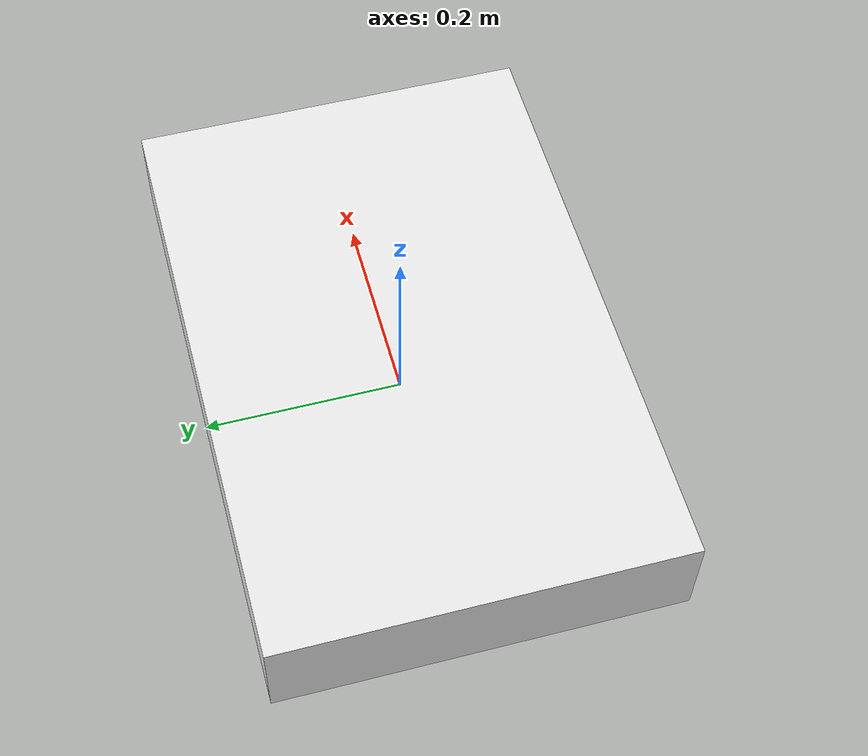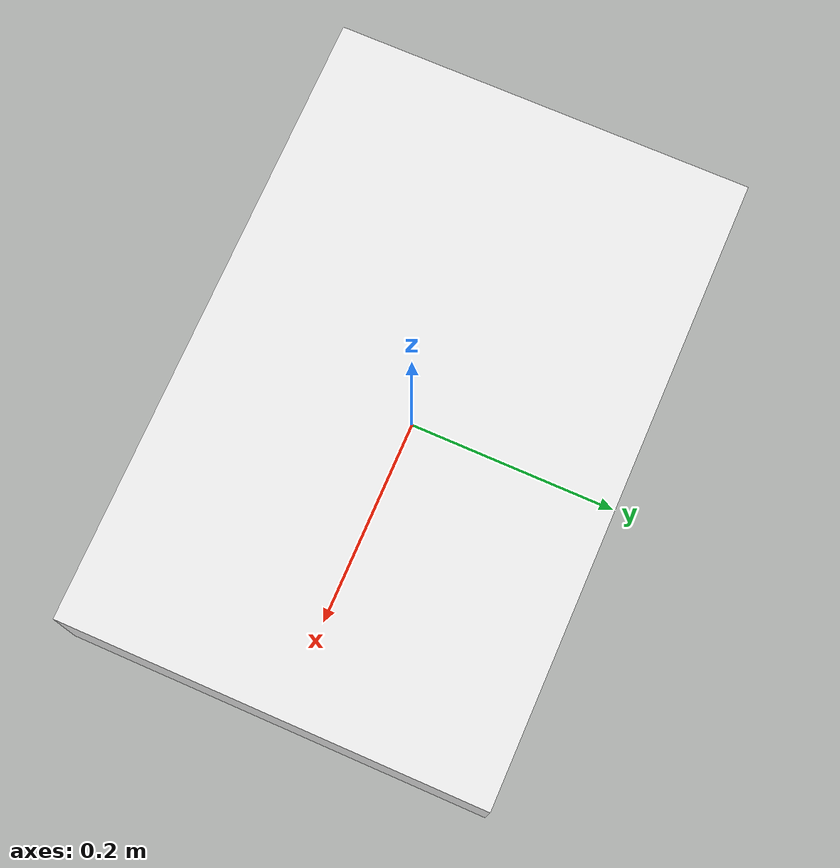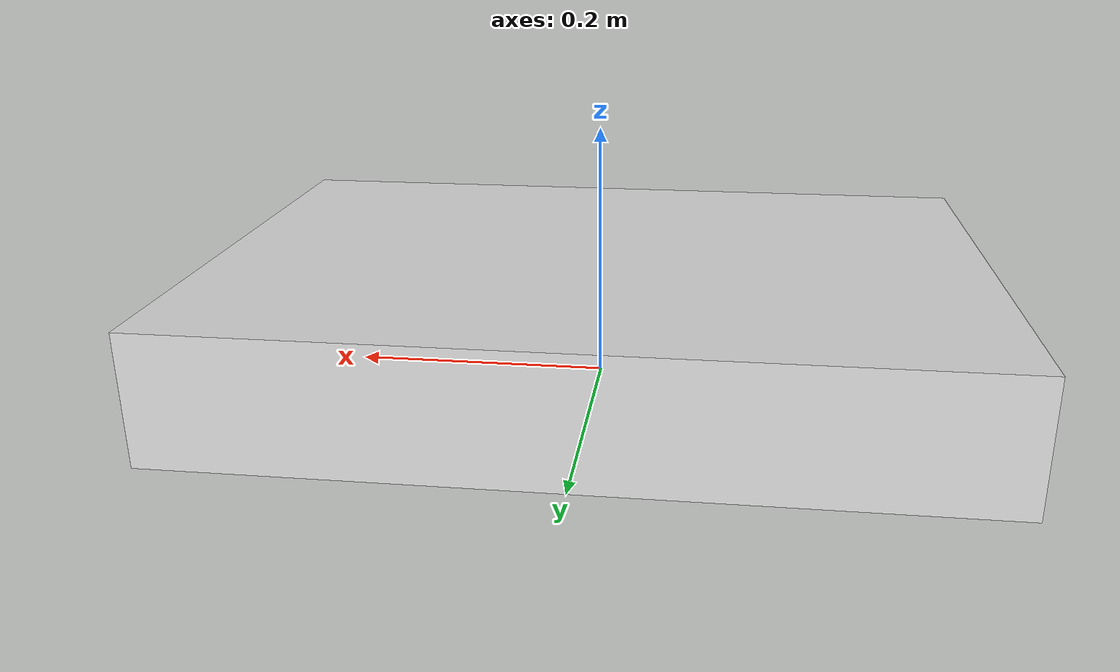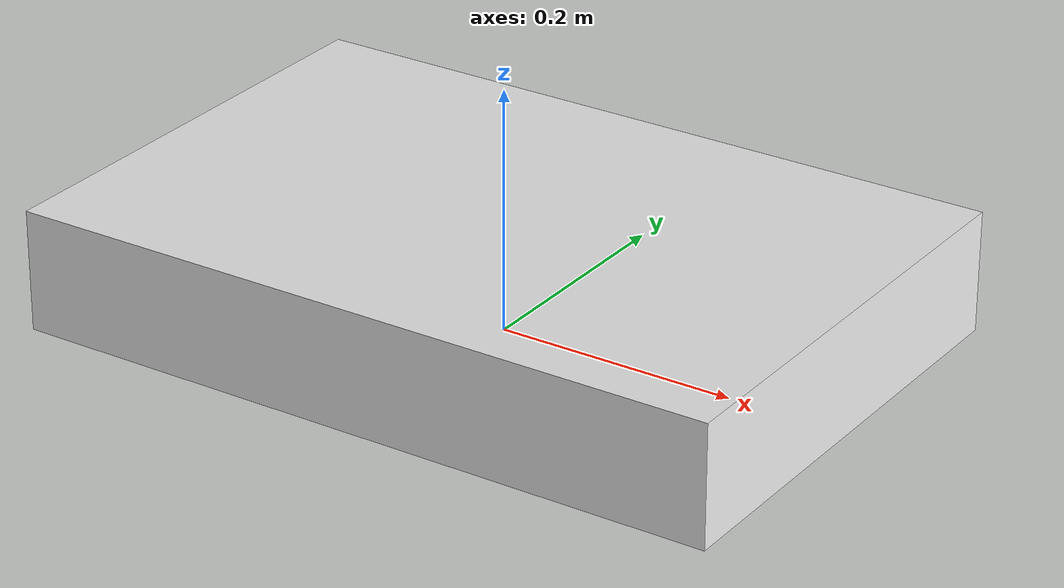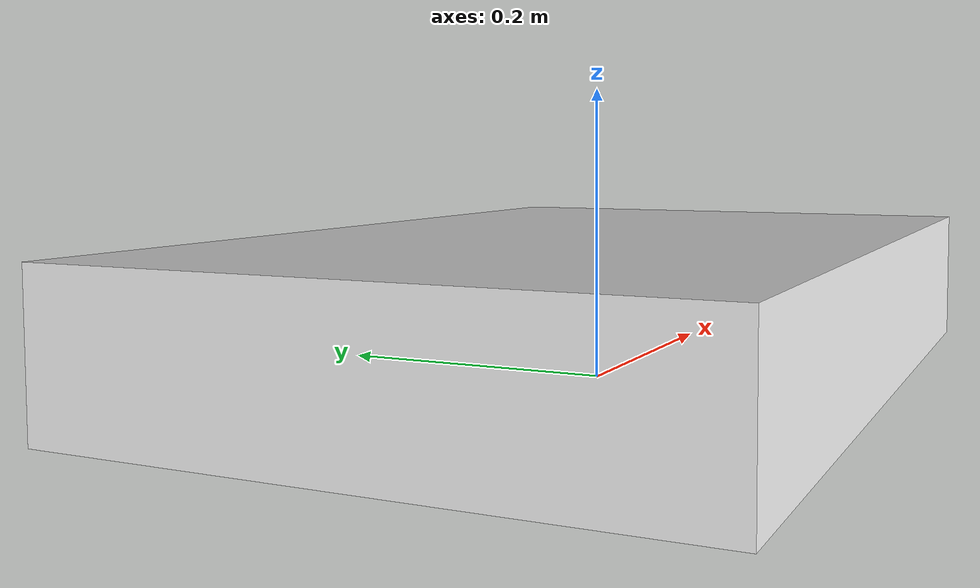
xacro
<?xml version="1.0"?>

<robot xmlns:xacro="http://www.ros.org/wiki/xacro">

  <xacro:property name="chassis_length" value="0.60"/>
  <xacro:property name="chassis_width" value="0.40"/>
  <xacro:property name="chassis_height" value="0.10"/>

  <!-- TODO:
       Replace with verified physical mass when available.
  -->
  <xacro:property name="chassis_mass" value="0.1"/>

  <!-- BASE LINK -->

  <link name="base_link"/>

  <!-- CHASSIS -->

  <joint
    name="chassis_joint"
    type="fixed">

    <parent link="base_link"/>
    <child link="chassis"/>

    <!-- Chassis center is half its height above ground plane -->
    <origin
      xyz="0 0 ${chassis_height / 2.0}"
      rpy="0 0 0"/>

  </joint>

  <link name="chassis">

    <visual>

      <geometry>
        <box
          size="${chassis_length}
                ${chassis_width}
                ${chassis_height}"/>
      </geometry>

      <material name="white"/>

    </visual>

    <collision>

      <geometry>
        <box
          size="${chassis_length}
                ${chassis_width}
                ${chassis_height}"/>
      </geometry>

    </collision>

    <xacro:inertial_box
      mass="${chassis_mass}"
      x="${chassis_length}"
      y="${chassis_width}"
      z="${chassis_height}">

      <origin
        xyz="0 0 0"
        rpy="0 0 0"/>

    </xacro:inertial_box>

  </link>

  <gazebo reference="chassis">
    <material>Gazebo/White</material>
  </gazebo>

</robot>
